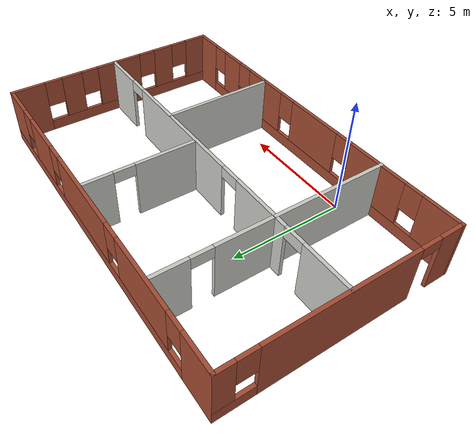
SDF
<?xml version='1.0'?>
<sdf version='1.6'>
  <model name='home'>
    <pose frame=''>3.33222 4.02379 0 0 -0 0</pose>
    <link name='Wall_0'>
      <pose frame=''>-7.93222 0.011207 0 0 -0 1.5708</pose>
      <visual name='Wall_0_Visual_0'>
        <pose frame=''>-4.43731 0 1.25 0 -0 0</pose>
        <geometry>
          <box>
            <size>1.12538 0.15 2.5</size>
          </box>
        </geometry>
        <material>
          <script>
            <uri>file://media/materials/scripts/gazebo.material</uri>
            <name>Gazebo/Bricks</name>
          </script>
          <ambient>1 1 1 1</ambient>
        </material>
        <meta>
          <layer>0</layer>
        </meta>
      </visual>
      <collision name='Wall_0_Collision_0'>
        <geometry>
          <box>
            <size>1.12538 0.15 2.5</size>
          </box>
        </geometry>
        <pose frame=''>-4.43731 0 1.25 0 -0 0</pose>
      </collision>
      <visual name='Wall_0_Visual_1'>
        <pose frame=''>0.213349 0 1.25 0 -0 0</pose>
        <geometry>
          <box>
            <size>6.37594 0.15 2.5</size>
          </box>
        </geometry>
        <material>
          <script>
            <uri>file://media/materials/scripts/gazebo.material</uri>
            <name>Gazebo/Bricks</name>
          </script>
          <ambient>1 1 1 1</ambient>
        </material>
        <meta>
          <layer>0</layer>
        </meta>
      </visual>
      <collision name='Wall_0_Collision_1'>
        <geometry>
          <box>
            <size>6.37594 0.15 2.5</size>
          </box>
        </geometry>
        <pose frame=''>0.213349 0 1.25 0 -0 0</pose>
      </collision>
      <visual name='Wall_0_Visual_2'>
        <pose frame=''>4.20066 0 0.25 0 -0 0</pose>
        <geometry>
          <box>
            <size>1.59868 0.15 0.5</size>
          </box>
        </geometry>
        <material>
          <script>
            <uri>file://media/materials/scripts/gazebo.material</uri>
            <name>Gazebo/Bricks</name>
          </script>
          <ambient>1 1 1 1</ambient>
        </material>
        <meta>
          <layer>0</layer>
        </meta>
      </visual>
      <collision name='Wall_0_Collision_2'>
        <geometry>
          <box>
            <size>1.59868 0.15 0.5</size>
          </box>
        </geometry>
        <pose frame=''>4.20066 0 0.25 0 -0 0</pose>
      </collision>
      <visual name='Wall_0_Visual_3'>
        <pose frame=''>4.60066 0 1.5 0 -0 0</pose>
        <geometry>
          <box>
            <size>0.79868 0.15 2</size>
          </box>
        </geometry>
        <material>
          <script>
            <uri>file://media/materials/scripts/gazebo.material</uri>
            <name>Gazebo/Bricks</name>
          </script>
          <ambient>1 1 1 1</ambient>
        </material>
        <meta>
          <layer>0</layer>
        </meta>
      </visual>
      <collision name='Wall_0_Collision_3'>
        <geometry>
          <box>
            <size>0.79868 0.15 2</size>
          </box>
        </geometry>
        <pose frame=''>4.60066 0 1.5 0 -0 0</pose>
      </collision>
      <visual name='Wall_0_Visual_4'>
        <pose frame=''>3.80132 0 1.9 0 -0 0</pose>
        <geometry>
          <box>
            <size>0.8 0.15 1.2</size>
          </box>
        </geometry>
        <material>
          <script>
            <uri>file://media/materials/scripts/gazebo.material</uri>
            <name>Gazebo/Bricks</name>
          </script>
          <ambient>1 1 1 1</ambient>
        </material>
        <meta>
          <layer>0</layer>
        </meta>
      </visual>
      <collision name='Wall_0_Collision_4'>
        <geometry>
          <box>
            <size>0.8 0.15 1.2</size>
          </box>
        </geometry>
        <pose frame=''>3.80132 0 1.9 0 -0 0</pose>
      </collision>
      <visual name='Wall_0_Visual_5'>
        <pose frame=''>-3.42462 0 2.25 0 -0 0</pose>
        <geometry>
          <box>
            <size>0.9 0.15 0.5</size>
          </box>
        </geometry>
        <material>
          <script>
            <uri>file://media/materials/scripts/gazebo.material</uri>
            <name>Gazebo/Bricks</name>
          </script>
          <ambient>1 1 1 1</ambient>
        </material>
        <meta>
          <layer>0</layer>
        </meta>
      </visual>
      <collision name='Wall_0_Collision_5'>
        <geometry>
          <box>
            <size>0.9 0.15 0.5</size>
          </box>
        </geometry>
        <pose frame=''>-3.42462 0 2.25 0 -0 0</pose>
      </collision>
    </link>
    <link name='Wall_1'>
      <pose frame=''>-0.007217 4.93621 0 0 -0 0</pose>
      <visual name='Wall_1_Visual_0'>
        <pose frame=''>-7.19718 0 1.25 0 -0 0</pose>
        <geometry>
          <box>
            <size>1.60564 0.15 2.5</size>
          </box>
        </geometry>
        <material>
          <script>
            <uri>file://media/materials/scripts/gazebo.material</uri>
            <name>Gazebo/Bricks</name>
          </script>
          <ambient>1 1 1 1</ambient>
        </material>
        <meta>
          <layer>0</layer>
        </meta>
      </visual>
      <collision name='Wall_1_Collision_0'>
        <geometry>
          <box>
            <size>1.60564 0.15 2.5</size>
          </box>
        </geometry>
        <pose frame=''>-7.19718 0 1.25 0 -0 0</pose>
      </collision>
      <visual name='Wall_1_Visual_1'>
        <pose frame=''>0.802818 0 0.25 0 -0 0</pose>
        <geometry>
          <box>
            <size>14.3944 0.15 0.5</size>
          </box>
        </geometry>
        <material>
          <script>
            <uri>file://media/materials/scripts/gazebo.material</uri>
            <name>Gazebo/Bricks</name>
          </script>
          <ambient>1 1 1 1</ambient>
        </material>
        <meta>
          <layer>0</layer>
        </meta>
      </visual>
      <collision name='Wall_1_Collision_1'>
        <geometry>
          <box>
            <size>14.3944 0.15 0.5</size>
          </box>
        </geometry>
        <pose frame=''>0.802818 0 0.25 0 -0 0</pose>
      </collision>
      <visual name='Wall_1_Visual_2'>
        <pose frame=''>-3.93452 0 1.5 0 -0 0</pose>
        <geometry>
          <box>
            <size>3.31969 0.15 2</size>
          </box>
        </geometry>
        <material>
          <script>
            <uri>file://media/materials/scripts/gazebo.material</uri>
            <name>Gazebo/Bricks</name>
          </script>
          <ambient>1 1 1 1</ambient>
        </material>
        <meta>
          <layer>0</layer>
        </meta>
      </visual>
      <collision name='Wall_1_Collision_2'>
        <geometry>
          <box>
            <size>3.31969 0.15 2</size>
          </box>
        </geometry>
        <pose frame=''>-3.93452 0 1.5 0 -0 0</pose>
      </collision>
      <visual name='Wall_1_Visual_3'>
        <pose frame=''>0.571663 0 1.5 0 -0 0</pose>
        <geometry>
          <box>
            <size>4.09267 0.15 2</size>
          </box>
        </geometry>
        <material>
          <script>
            <uri>file://media/materials/scripts/gazebo.material</uri>
            <name>Gazebo/Bricks</name>
          </script>
          <ambient>1 1 1 1</ambient>
        </material>
        <meta>
          <layer>0</layer>
        </meta>
      </visual>
      <collision name='Wall_1_Collision_3'>
        <geometry>
          <box>
            <size>4.09267 0.15 2</size>
          </box>
        </geometry>
        <pose frame=''>0.571663 0 1.5 0 -0 0</pose>
      </collision>
      <visual name='Wall_1_Visual_4'>
        <pose frame=''>4.47103 0 1.5 0 -0 0</pose>
        <geometry>
          <box>
            <size>2.10607 0.15 2</size>
          </box>
        </geometry>
        <material>
          <script>
            <uri>file://media/materials/scripts/gazebo.material</uri>
            <name>Gazebo/Bricks</name>
          </script>
          <ambient>1 1 1 1</ambient>
        </material>
        <meta>
          <layer>0</layer>
        </meta>
      </visual>
      <collision name='Wall_1_Collision_4'>
        <geometry>
          <box>
            <size>2.10607 0.15 2</size>
          </box>
        </geometry>
        <pose frame=''>4.47103 0 1.5 0 -0 0</pose>
      </collision>
      <visual name='Wall_1_Visual_5'>
        <pose frame=''>7.16203 0 1.5 0 -0 0</pose>
        <geometry>
          <box>
            <size>1.67593 0.15 2</size>
          </box>
        </geometry>
        <material>
          <script>
            <uri>file://media/materials/scripts/gazebo.material</uri>
            <name>Gazebo/Bricks</name>
          </script>
          <ambient>1 1 1 1</ambient>
        </material>
        <meta>
          <layer>0</layer>
        </meta>
      </visual>
      <collision name='Wall_1_Collision_5'>
        <geometry>
          <box>
            <size>1.67593 0.15 2</size>
          </box>
        </geometry>
        <pose frame=''>7.16203 0 1.5 0 -0 0</pose>
      </collision>
      <visual name='Wall_1_Visual_6'>
        <pose frame=''>-5.99436 0 1.9 0 -0 0</pose>
        <geometry>
          <box>
            <size>0.8 0.15 1.2</size>
          </box>
        </geometry>
        <material>
          <script>
            <uri>file://media/materials/scripts/gazebo.material</uri>
            <name>Gazebo/Bricks</name>
          </script>
          <ambient>1 1 1 1</ambient>
        </material>
        <meta>
          <layer>0</layer>
        </meta>
      </visual>
      <collision name='Wall_1_Collision_6'>
        <geometry>
          <box>
            <size>0.8 0.15 1.2</size>
          </box>
        </geometry>
        <pose frame=''>-5.99436 0 1.9 0 -0 0</pose>
      </collision>
      <visual name='Wall_1_Visual_7'>
        <pose frame=''>-1.87467 0 1.9 0 -0 0</pose>
        <geometry>
          <box>
            <size>0.8 0.15 1.2</size>
          </box>
        </geometry>
        <material>
          <script>
            <uri>file://media/materials/scripts/gazebo.material</uri>
            <name>Gazebo/Bricks</name>
          </script>
          <ambient>1 1 1 1</ambient>
        </material>
        <meta>
          <layer>0</layer>
        </meta>
      </visual>
      <collision name='Wall_1_Collision_7'>
        <geometry>
          <box>
            <size>0.8 0.15 1.2</size>
          </box>
        </geometry>
        <pose frame=''>-1.87467 0 1.9 0 -0 0</pose>
      </collision>
      <visual name='Wall_1_Visual_8'>
        <pose frame=''>3.018 0 1.9 0 -0 0</pose>
        <geometry>
          <box>
            <size>0.8 0.15 1.2</size>
          </box>
        </geometry>
        <material>
          <script>
            <uri>file://media/materials/scripts/gazebo.material</uri>
            <name>Gazebo/Bricks</name>
          </script>
          <ambient>1 1 1 1</ambient>
        </material>
        <meta>
          <layer>0</layer>
        </meta>
      </visual>
      <collision name='Wall_1_Collision_8'>
        <geometry>
          <box>
            <size>0.8 0.15 1.2</size>
          </box>
        </geometry>
        <pose frame=''>3.018 0 1.9 0 -0 0</pose>
      </collision>
      <visual name='Wall_1_Visual_9'>
        <pose frame=''>5.92407 0 1.9 0 -0 0</pose>
        <geometry>
          <box>
            <size>0.8 0.15 1.2</size>
          </box>
        </geometry>
        <material>
          <script>
            <uri>file://media/materials/scripts/gazebo.material</uri>
            <name>Gazebo/Bricks</name>
          </script>
          <ambient>1 1 1 1</ambient>
        </material>
        <meta>
          <layer>0</layer>
        </meta>
      </visual>
      <collision name='Wall_1_Collision_9'>
        <geometry>
          <box>
            <size>0.8 0.15 1.2</size>
          </box>
        </geometry>
        <pose frame=''>5.92407 0 1.9 0 -0 0</pose>
      </collision>
    </link>
    <link name='Wall_13'>
      <collision name='Wall_13_Collision'>
        <geometry>
          <box>
            <size>5 0.15 2.5</size>
          </box>
        </geometry>
        <pose frame=''>0 0 1.25 0 -0 0</pose>
      </collision>
      <visual name='Wall_13_Visual'>
        <pose frame=''>0 0 1.25 0 -0 0</pose>
        <geometry>
          <box>
            <size>5 0.15 2.5</size>
          </box>
        </geometry>
        <material>
          <script>
            <uri>file://media/materials/scripts/gazebo.material</uri>
            <name>Gazebo/CeilingTiled</name>
          </script>
          <ambient>1 1 1 1</ambient>
        </material>
        <meta>
          <layer>0</layer>
        </meta>
      </visual>
      <pose frame=''>2.70964 -2.42633 0 0 -0 -1.5708</pose>
    </link>
    <link name='Wall_2'>
      <pose frame=''>7.91778 0.011207 0 0 -0 -1.5708</pose>
      <visual name='Wall_2_Visual_0'>
        <pose frame=''>-4.23291 0 1.25 0 -0 0</pose>
        <geometry>
          <box>
            <size>1.53417 0.15 2.5</size>
          </box>
        </geometry>
        <material>
          <script>
            <uri>file://media/materials/scripts/gazebo.material</uri>
            <name>Gazebo/Bricks</name>
          </script>
          <ambient>1 1 1 1</ambient>
        </material>
        <meta>
          <layer>0</layer>
        </meta>
      </visual>
      <collision name='Wall_2_Collision_0'>
        <geometry>
          <box>
            <size>1.53417 0.15 2.5</size>
          </box>
        </geometry>
        <pose frame=''>-4.23291 0 1.25 0 -0 0</pose>
      </collision>
      <visual name='Wall_2_Visual_1'>
        <pose frame=''>0.767087 0 0.25 0 -0 0</pose>
        <geometry>
          <box>
            <size>8.46583 0.15 0.5</size>
          </box>
        </geometry>
        <material>
          <script>
            <uri>file://media/materials/scripts/gazebo.material</uri>
            <name>Gazebo/Bricks</name>
          </script>
          <ambient>1 1 1 1</ambient>
        </material>
        <meta>
          <layer>0</layer>
        </meta>
      </visual>
      <collision name='Wall_2_Collision_1'>
        <geometry>
          <box>
            <size>8.46583 0.15 0.5</size>
          </box>
        </geometry>
        <pose frame=''>0.767087 0 0.25 0 -0 0</pose>
      </collision>
      <visual name='Wall_2_Visual_2'>
        <pose frame=''>-2.18802 0 1.5 0 -0 0</pose>
        <geometry>
          <box>
            <size>0.955613 0.15 2</size>
          </box>
        </geometry>
        <material>
          <script>
            <uri>file://media/materials/scripts/gazebo.material</uri>
            <name>Gazebo/Bricks</name>
          </script>
          <ambient>1 1 1 1</ambient>
        </material>
        <meta>
          <layer>0</layer>
        </meta>
      </visual>
      <collision name='Wall_2_Collision_2'>
        <geometry>
          <box>
            <size>0.955613 0.15 2</size>
          </box>
        </geometry>
        <pose frame=''>-2.18802 0 1.5 0 -0 0</pose>
      </collision>
      <visual name='Wall_2_Visual_3'>
        <pose frame=''>0.179399 0 1.5 0 -0 0</pose>
        <geometry>
          <box>
            <size>2.17922 0.15 2</size>
          </box>
        </geometry>
        <material>
          <script>
            <uri>file://media/materials/scripts/gazebo.material</uri>
            <name>Gazebo/Bricks</name>
          </script>
          <ambient>1 1 1 1</ambient>
        </material>
        <meta>
          <layer>0</layer>
        </meta>
      </visual>
      <collision name='Wall_2_Collision_3'>
        <geometry>
          <box>
            <size>2.17922 0.15 2</size>
          </box>
        </geometry>
        <pose frame=''>0.179399 0 1.5 0 -0 0</pose>
      </collision>
      <visual name='Wall_2_Visual_4'>
        <pose frame=''>2.56012 0 1.5 0 -0 0</pose>
        <geometry>
          <box>
            <size>0.982213 0.15 2</size>
          </box>
        </geometry>
        <material>
          <script>
            <uri>file://media/materials/scripts/gazebo.material</uri>
            <name>Gazebo/Bricks</name>
          </script>
          <ambient>1 1 1 1</ambient>
        </material>
        <meta>
          <layer>0</layer>
        </meta>
      </visual>
      <collision name='Wall_2_Collision_4'>
        <geometry>
          <box>
            <size>0.982213 0.15 2</size>
          </box>
        </geometry>
        <pose frame=''>2.56012 0 1.5 0 -0 0</pose>
      </collision>
      <visual name='Wall_2_Visual_5'>
        <pose frame=''>4.42561 0 1.5 0 -0 0</pose>
        <geometry>
          <box>
            <size>1.14878 0.15 2</size>
          </box>
        </geometry>
        <material>
          <script>
            <uri>file://media/materials/scripts/gazebo.material</uri>
            <name>Gazebo/Bricks</name>
          </script>
          <ambient>1 1 1 1</ambient>
        </material>
        <meta>
          <layer>0</layer>
        </meta>
      </visual>
      <collision name='Wall_2_Collision_5'>
        <geometry>
          <box>
            <size>1.14878 0.15 2</size>
          </box>
        </geometry>
        <pose frame=''>4.42561 0 1.5 0 -0 0</pose>
      </collision>
      <visual name='Wall_2_Visual_6'>
        <pose frame=''>-3.06583 0 1.9 0 -0 0</pose>
        <geometry>
          <box>
            <size>0.8 0.15 1.2</size>
          </box>
        </geometry>
        <material>
          <script>
            <uri>file://media/materials/scripts/gazebo.material</uri>
            <name>Gazebo/Bricks</name>
          </script>
          <ambient>1 1 1 1</ambient>
        </material>
        <meta>
          <layer>0</layer>
        </meta>
      </visual>
      <collision name='Wall_2_Collision_6'>
        <geometry>
          <box>
            <size>0.8 0.15 1.2</size>
          </box>
        </geometry>
        <pose frame=''>-3.06583 0 1.9 0 -0 0</pose>
      </collision>
      <visual name='Wall_2_Visual_7'>
        <pose frame=''>-1.31021 0 1.9 0 -0 0</pose>
        <geometry>
          <box>
            <size>0.8 0.15 1.2</size>
          </box>
        </geometry>
        <material>
          <script>
            <uri>file://media/materials/scripts/gazebo.material</uri>
            <name>Gazebo/Bricks</name>
          </script>
          <ambient>1 1 1 1</ambient>
        </material>
        <meta>
          <layer>0</layer>
        </meta>
      </visual>
      <collision name='Wall_2_Collision_7'>
        <geometry>
          <box>
            <size>0.8 0.15 1.2</size>
          </box>
        </geometry>
        <pose frame=''>-1.31021 0 1.9 0 -0 0</pose>
      </collision>
      <visual name='Wall_2_Visual_8'>
        <pose frame=''>1.66901 0 1.9 0 -0 0</pose>
        <geometry>
          <box>
            <size>0.8 0.15 1.2</size>
          </box>
        </geometry>
        <material>
          <script>
            <uri>file://media/materials/scripts/gazebo.material</uri>
            <name>Gazebo/Bricks</name>
          </script>
          <ambient>1 1 1 1</ambient>
        </material>
        <meta>
          <layer>0</layer>
        </meta>
      </visual>
      <collision name='Wall_2_Collision_8'>
        <geometry>
          <box>
            <size>0.8 0.15 1.2</size>
          </box>
        </geometry>
        <pose frame=''>1.66901 0 1.9 0 -0 0</pose>
      </collision>
      <visual name='Wall_2_Visual_9'>
        <pose frame=''>3.45122 0 1.9 0 -0 0</pose>
        <geometry>
          <box>
            <size>0.8 0.15 1.2</size>
          </box>
        </geometry>
        <material>
          <script>
            <uri>file://media/materials/scripts/gazebo.material</uri>
            <name>Gazebo/Bricks</name>
          </script>
          <ambient>1 1 1 1</ambient>
        </material>
        <meta>
          <layer>0</layer>
        </meta>
      </visual>
      <collision name='Wall_2_Collision_9'>
        <geometry>
          <box>
            <size>0.8 0.15 1.2</size>
          </box>
        </geometry>
        <pose frame=''>3.45122 0 1.9 0 -0 0</pose>
      </collision>
    </link>
    <link name='Wall_3'>
      <pose frame=''>-0.007217 -4.91379 0 0 -0 3.14159</pose>
      <visual name='Wall_3_Visual_0'>
        <pose frame=''>-7.30095 0 1.25 0 -0 0</pose>
        <geometry>
          <box>
            <size>1.3981 0.15 2.5</size>
          </box>
        </geometry>
        <material>
          <script>
            <uri>file://media/materials/scripts/gazebo.material</uri>
            <name>Gazebo/Bricks</name>
          </script>
          <ambient>1 1 1 1</ambient>
        </material>
        <meta>
          <layer>0</layer>
        </meta>
      </visual>
      <collision name='Wall_3_Collision_0'>
        <geometry>
          <box>
            <size>1.3981 0.15 2.5</size>
          </box>
        </geometry>
        <pose frame=''>-7.30095 0 1.25 0 -0 0</pose>
      </collision>
      <visual name='Wall_3_Visual_1'>
        <pose frame=''>0.699053 0 0.25 0 -0 0</pose>
        <geometry>
          <box>
            <size>14.6019 0.15 0.5</size>
          </box>
        </geometry>
        <material>
          <script>
            <uri>file://media/materials/scripts/gazebo.material</uri>
            <name>Gazebo/Bricks</name>
          </script>
          <ambient>1 1 1 1</ambient>
        </material>
        <meta>
          <layer>0</layer>
        </meta>
      </visual>
      <collision name='Wall_3_Collision_1'>
        <geometry>
          <box>
            <size>14.6019 0.15 0.5</size>
          </box>
        </geometry>
        <pose frame=''>0.699053 0 0.25 0 -0 0</pose>
      </collision>
      <visual name='Wall_3_Visual_2'>
        <pose frame=''>-5.20439 0 1.5 0 -0 0</pose>
        <geometry>
          <box>
            <size>1.19501 0.15 2</size>
          </box>
        </geometry>
        <material>
          <script>
            <uri>file://media/materials/scripts/gazebo.material</uri>
            <name>Gazebo/Bricks</name>
          </script>
          <ambient>1 1 1 1</ambient>
        </material>
        <meta>
          <layer>0</layer>
        </meta>
      </visual>
      <collision name='Wall_3_Collision_2'>
        <geometry>
          <box>
            <size>1.19501 0.15 2</size>
          </box>
        </geometry>
        <pose frame=''>-5.20439 0 1.5 0 -0 0</pose>
      </collision>
      <visual name='Wall_3_Visual_3'>
        <pose frame=''>-2.66407 0 1.5 0 -0 0</pose>
        <geometry>
          <box>
            <size>2.28562 0.15 2</size>
          </box>
        </geometry>
        <material>
          <script>
            <uri>file://media/materials/scripts/gazebo.material</uri>
            <name>Gazebo/Bricks</name>
          </script>
          <ambient>1 1 1 1</ambient>
        </material>
        <meta>
          <layer>0</layer>
        </meta>
      </visual>
      <collision name='Wall_3_Collision_3'>
        <geometry>
          <box>
            <size>2.28562 0.15 2</size>
          </box>
        </geometry>
        <pose frame=''>-2.66407 0 1.5 0 -0 0</pose>
      </collision>
      <visual name='Wall_3_Visual_4'>
        <pose frame=''>0.621056 0 1.5 0 -0 0</pose>
        <geometry>
          <box>
            <size>2.68463 0.15 2</size>
          </box>
        </geometry>
        <material>
          <script>
            <uri>file://media/materials/scripts/gazebo.material</uri>
            <name>Gazebo/Bricks</name>
          </script>
          <ambient>1 1 1 1</ambient>
        </material>
        <meta>
          <layer>0</layer>
        </meta>
      </visual>
      <collision name='Wall_3_Collision_4'>
        <geometry>
          <box>
            <size>2.68463 0.15 2</size>
          </box>
        </geometry>
        <pose frame=''>0.621056 0 1.5 0 -0 0</pose>
      </collision>
      <visual name='Wall_3_Visual_5'>
        <pose frame=''>4.13228 0 1.5 0 -0 0</pose>
        <geometry>
          <box>
            <size>2.73783 0.15 2</size>
          </box>
        </geometry>
        <material>
          <script>
            <uri>file://media/materials/scripts/gazebo.material</uri>
            <name>Gazebo/Bricks</name>
          </script>
          <ambient>1 1 1 1</ambient>
        </material>
        <meta>
          <layer>0</layer>
        </meta>
      </visual>
      <collision name='Wall_3_Collision_5'>
        <geometry>
          <box>
            <size>2.73783 0.15 2</size>
          </box>
        </geometry>
        <pose frame=''>4.13228 0 1.5 0 -0 0</pose>
      </collision>
      <visual name='Wall_3_Visual_6'>
        <pose frame=''>7.1506 0 1.5 0 -0 0</pose>
        <geometry>
          <box>
            <size>1.6988 0.15 2</size>
          </box>
        </geometry>
        <material>
          <script>
            <uri>file://media/materials/scripts/gazebo.material</uri>
            <name>Gazebo/Bricks</name>
          </script>
          <ambient>1 1 1 1</ambient>
        </material>
        <meta>
          <layer>0</layer>
        </meta>
      </visual>
      <collision name='Wall_3_Collision_6'>
        <geometry>
          <box>
            <size>1.6988 0.15 2</size>
          </box>
        </geometry>
        <pose frame=''>7.1506 0 1.5 0 -0 0</pose>
      </collision>
      <visual name='Wall_3_Visual_7'>
        <pose frame=''>-6.2019 0 1.9 0 -0 0</pose>
        <geometry>
          <box>
            <size>0.8 0.15 1.2</size>
          </box>
        </geometry>
        <material>
          <script>
            <uri>file://media/materials/scripts/gazebo.material</uri>
            <name>Gazebo/Bricks</name>
          </script>
          <ambient>1 1 1 1</ambient>
        </material>
        <meta>
          <layer>0</layer>
        </meta>
      </visual>
      <collision name='Wall_3_Collision_7'>
        <geometry>
          <box>
            <size>0.8 0.15 1.2</size>
          </box>
        </geometry>
        <pose frame=''>-6.2019 0 1.9 0 -0 0</pose>
      </collision>
      <visual name='Wall_3_Visual_8'>
        <pose frame=''>-4.20688 0 1.9 0 -0 0</pose>
        <geometry>
          <box>
            <size>0.8 0.15 1.2</size>
          </box>
        </geometry>
        <material>
          <script>
            <uri>file://media/materials/scripts/gazebo.material</uri>
            <name>Gazebo/Bricks</name>
          </script>
          <ambient>1 1 1 1</ambient>
        </material>
        <meta>
          <layer>0</layer>
        </meta>
      </visual>
      <collision name='Wall_3_Collision_8'>
        <geometry>
          <box>
            <size>0.8 0.15 1.2</size>
          </box>
        </geometry>
        <pose frame=''>-4.20688 0 1.9 0 -0 0</pose>
      </collision>
      <visual name='Wall_3_Visual_9'>
        <pose frame=''>-1.12126 0 1.9 0 -0 0</pose>
        <geometry>
          <box>
            <size>0.8 0.15 1.2</size>
          </box>
        </geometry>
        <material>
          <script>
            <uri>file://media/materials/scripts/gazebo.material</uri>
            <name>Gazebo/Bricks</name>
          </script>
          <ambient>1 1 1 1</ambient>
        </material>
        <meta>
          <layer>0</layer>
        </meta>
      </visual>
      <collision name='Wall_3_Collision_9'>
        <geometry>
          <box>
            <size>0.8 0.15 1.2</size>
          </box>
        </geometry>
        <pose frame=''>-1.12126 0 1.9 0 -0 0</pose>
      </collision>
      <visual name='Wall_3_Visual_10'>
        <pose frame=''>2.36337 0 1.9 0 -0 0</pose>
        <geometry>
          <box>
            <size>0.8 0.15 1.2</size>
          </box>
        </geometry>
        <material>
          <script>
            <uri>file://media/materials/scripts/gazebo.material</uri>
            <name>Gazebo/Bricks</name>
          </script>
          <ambient>1 1 1 1</ambient>
        </material>
        <meta>
          <layer>0</layer>
        </meta>
      </visual>
      <collision name='Wall_3_Collision_10'>
        <geometry>
          <box>
            <size>0.8 0.15 1.2</size>
          </box>
        </geometry>
        <pose frame=''>2.36337 0 1.9 0 -0 0</pose>
      </collision>
      <visual name='Wall_3_Visual_11'>
        <pose frame=''>5.9012 0 1.9 0 -0 0</pose>
        <geometry>
          <box>
            <size>0.8 0.15 1.2</size>
          </box>
        </geometry>
        <material>
          <script>
            <uri>file://media/materials/scripts/gazebo.material</uri>
            <name>Gazebo/Bricks</name>
          </script>
          <ambient>1 1 1 1</ambient>
        </material>
        <meta>
          <layer>0</layer>
        </meta>
      </visual>
      <collision name='Wall_3_Collision_11'>
        <geometry>
          <box>
            <size>0.8 0.15 1.2</size>
          </box>
        </geometry>
        <pose frame=''>5.9012 0 1.9 0 -0 0</pose>
      </collision>
    </link>
    <link name='Wall_5'>
      <pose frame=''>-4.28628 -0.011206 0 0 -0 -1.5708</pose>
      <visual name='Wall_5_Visual_0'>
        <pose frame=''>-4.20262 0 1.25 0 -0 0</pose>
        <geometry>
          <box>
            <size>1.59476 0.15 2.5</size>
          </box>
        </geometry>
        <material>
          <script>
            <uri>file://media/materials/scripts/gazebo.material</uri>
            <name>Gazebo/CeilingTiled</name>
          </script>
          <ambient>1 1 1 1</ambient>
        </material>
        <meta>
          <layer>0</layer>
        </meta>
      </visual>
      <collision name='Wall_5_Collision_0'>
        <geometry>
          <box>
            <size>1.59476 0.15 2.5</size>
          </box>
        </geometry>
        <pose frame=''>-4.20262 0 1.25 0 -0 0</pose>
      </collision>
      <visual name='Wall_5_Visual_1'>
        <pose frame=''>1.24738 0 1.25 0 -0 0</pose>
        <geometry>
          <box>
            <size>7.50524 0.15 2.5</size>
          </box>
        </geometry>
        <material>
          <script>
            <uri>file://media/materials/scripts/gazebo.material</uri>
            <name>Gazebo/CeilingTiled</name>
          </script>
          <ambient>1 1 1 1</ambient>
        </material>
        <meta>
          <layer>0</layer>
        </meta>
      </visual>
      <collision name='Wall_5_Collision_1'>
        <geometry>
          <box>
            <size>7.50524 0.15 2.5</size>
          </box>
        </geometry>
        <pose frame=''>1.24738 0 1.25 0 -0 0</pose>
      </collision>
      <visual name='Wall_5_Visual_2'>
        <pose frame=''>-2.95524 0 2.25 0 -0 0</pose>
        <geometry>
          <box>
            <size>0.9 0.15 0.5</size>
          </box>
        </geometry>
        <material>
          <script>
            <uri>file://media/materials/scripts/gazebo.material</uri>
            <name>Gazebo/CeilingTiled</name>
          </script>
          <ambient>1 1 1 1</ambient>
        </material>
        <meta>
          <layer>0</layer>
        </meta>
      </visual>
      <collision name='Wall_5_Collision_2'>
        <geometry>
          <box>
            <size>0.9 0.15 0.5</size>
          </box>
        </geometry>
        <pose frame=''>-2.95524 0 2.25 0 -0 0</pose>
      </collision>
    </link>
    <link name='Wall_7'>
      <pose frame=''>0.007219 0.020135 0 0 -0 0</pose>
      <visual name='Wall_7_Visual_0'>
        <pose frame=''>-6.87691 0 1.25 0 -0 0</pose>
        <geometry>
          <box>
            <size>2.24617 0.15 2.5</size>
          </box>
        </geometry>
        <material>
          <script>
            <uri>file://media/materials/scripts/gazebo.material</uri>
            <name>Gazebo/CeilingTiled</name>
          </script>
          <ambient>0.435294 0.796078 0.67451 1</ambient>
        </material>
        <meta>
          <layer>0</layer>
        </meta>
      </visual>
      <collision name='Wall_7_Collision_0'>
        <geometry>
          <box>
            <size>2.24617 0.15 2.5</size>
          </box>
        </geometry>
        <pose frame=''>-6.87691 0 1.25 0 -0 0</pose>
      </collision>
      <visual name='Wall_7_Visual_1'>
        <pose frame=''>-3.48171 0 1.25 0 -0 0</pose>
        <geometry>
          <box>
            <size>2.74423 0.15 2.5</size>
          </box>
        </geometry>
        <material>
          <script>
            <uri>file://media/materials/scripts/gazebo.material</uri>
            <name>Gazebo/CeilingTiled</name>
          </script>
          <ambient>0.435294 0.796078 0.67451 1</ambient>
        </material>
        <meta>
          <layer>0</layer>
        </meta>
      </visual>
      <collision name='Wall_7_Collision_1'>
        <geometry>
          <box>
            <size>2.74423 0.15 2.5</size>
          </box>
        </geometry>
        <pose frame=''>-3.48171 0 1.25 0 -0 0</pose>
      </collision>
      <visual name='Wall_7_Visual_2'>
        <pose frame=''>1.91813 0 1.25 0 -0 0</pose>
        <geometry>
          <box>
            <size>6.25545 0.15 2.5</size>
          </box>
        </geometry>
        <material>
          <script>
            <uri>file://media/materials/scripts/gazebo.material</uri>
            <name>Gazebo/CeilingTiled</name>
          </script>
          <ambient>0.435294 0.796078 0.67451 1</ambient>
        </material>
        <meta>
          <layer>0</layer>
        </meta>
      </visual>
      <collision name='Wall_7_Collision_2'>
        <geometry>
          <box>
            <size>6.25545 0.15 2.5</size>
          </box>
        </geometry>
        <pose frame=''>1.91813 0 1.25 0 -0 0</pose>
      </collision>
      <visual name='Wall_7_Visual_3'>
        <pose frame=''>6.97293 0 1.25 0 -0 0</pose>
        <geometry>
          <box>
            <size>2.05415 0.15 2.5</size>
          </box>
        </geometry>
        <material>
          <script>
            <uri>file://media/materials/scripts/gazebo.material</uri>
            <name>Gazebo/CeilingTiled</name>
          </script>
          <ambient>0.435294 0.796078 0.67451 1</ambient>
        </material>
        <meta>
          <layer>0</layer>
        </meta>
      </visual>
      <collision name='Wall_7_Collision_3'>
        <geometry>
          <box>
            <size>2.05415 0.15 2.5</size>
          </box>
        </geometry>
        <pose frame=''>6.97293 0 1.25 0 -0 0</pose>
      </collision>
      <visual name='Wall_7_Visual_4'>
        <pose frame=''>-5.30383 0 2.25 0 -0 0</pose>
        <geometry>
          <box>
            <size>0.9 0.15 0.5</size>
          </box>
        </geometry>
        <material>
          <script>
            <uri>file://media/materials/scripts/gazebo.material</uri>
            <name>Gazebo/CeilingTiled</name>
          </script>
          <ambient>0.435294 0.796078 0.67451 1</ambient>
        </material>
        <meta>
          <layer>0</layer>
        </meta>
      </visual>
      <collision name='Wall_7_Collision_4'>
        <geometry>
          <box>
            <size>0.9 0.15 0.5</size>
          </box>
        </geometry>
        <pose frame=''>-5.30383 0 2.25 0 -0 0</pose>
      </collision>
      <visual name='Wall_7_Visual_5'>
        <pose frame=''>-1.6596 0 2.25 0 -0 0</pose>
        <geometry>
          <box>
            <size>0.9 0.15 0.5</size>
          </box>
        </geometry>
        <material>
          <script>
            <uri>file://media/materials/scripts/gazebo.material</uri>
            <name>Gazebo/CeilingTiled</name>
          </script>
          <ambient>0.435294 0.796078 0.67451 1</ambient>
        </material>
        <meta>
          <layer>0</layer>
        </meta>
      </visual>
      <collision name='Wall_7_Collision_5'>
        <geometry>
          <box>
            <size>0.9 0.15 0.5</size>
          </box>
        </geometry>
        <pose frame=''>-1.6596 0 2.25 0 -0 0</pose>
      </collision>
      <visual name='Wall_7_Visual_6'>
        <pose frame=''>5.49585 0 2.25 0 -0 0</pose>
        <geometry>
          <box>
            <size>0.9 0.15 0.5</size>
          </box>
        </geometry>
        <material>
          <script>
            <uri>file://media/materials/scripts/gazebo.material</uri>
            <name>Gazebo/CeilingTiled</name>
          </script>
          <ambient>0.435294 0.796078 0.67451 1</ambient>
        </material>
        <meta>
          <layer>0</layer>
        </meta>
      </visual>
      <collision name='Wall_7_Collision_6'>
        <geometry>
          <box>
            <size>0.9 0.15 0.5</size>
          </box>
        </geometry>
        <pose frame=''>5.49585 0 2.25 0 -0 0</pose>
      </collision>
    </link>
    <link name='Wall_9'>
      <pose frame=''>0.686805 2.48205 0 0 -0 1.5708</pose>
      <visual name='Wall_9_Visual_0'>
        <pose frame=''>-1.07511 0 1.25 0 -0 0</pose>
        <geometry>
          <box>
            <size>2.59978 0.15 2.5</size>
          </box>
        </geometry>
        <material>
          <script>
            <uri>file://media/materials/scripts/gazebo.material</uri>
            <name>Gazebo/CeilingTiled</name>
          </script>
          <ambient>1 1 1 1</ambient>
        </material>
        <meta>
          <layer>0</layer>
        </meta>
      </visual>
      <collision name='Wall_9_Collision_0'>
        <geometry>
          <box>
            <size>2.59978 0.15 2.5</size>
          </box>
        </geometry>
        <pose frame=''>-1.07511 0 1.25 0 -0 0</pose>
      </collision>
      <visual name='Wall_9_Visual_1'>
        <pose frame=''>1.74989 0 1.25 0 -0 0</pose>
        <geometry>
          <box>
            <size>1.25022 0.15 2.5</size>
          </box>
        </geometry>
        <material>
          <script>
            <uri>file://media/materials/scripts/gazebo.material</uri>
            <name>Gazebo/CeilingTiled</name>
          </script>
          <ambient>1 1 1 1</ambient>
        </material>
        <meta>
          <layer>0</layer>
        </meta>
      </visual>
      <collision name='Wall_9_Collision_1'>
        <geometry>
          <box>
            <size>1.25022 0.15 2.5</size>
          </box>
        </geometry>
        <pose frame=''>1.74989 0 1.25 0 -0 0</pose>
      </collision>
      <visual name='Wall_9_Visual_2'>
        <pose frame=''>0.674783 0 2.25 0 -0 0</pose>
        <geometry>
          <box>
            <size>0.9 0.15 0.5</size>
          </box>
        </geometry>
        <material>
          <script>
            <uri>file://media/materials/scripts/gazebo.material</uri>
            <name>Gazebo/CeilingTiled</name>
          </script>
          <ambient>1 1 1 1</ambient>
        </material>
        <meta>
          <layer>0</layer>
        </meta>
      </visual>
      <collision name='Wall_9_Collision_2'>
        <geometry>
          <box>
            <size>0.9 0.15 0.5</size>
          </box>
        </geometry>
        <pose frame=''>0.674783 0 2.25 0 -0 0</pose>
      </collision>
    </link>
    <static>1</static>
  </model>
</sdf>
